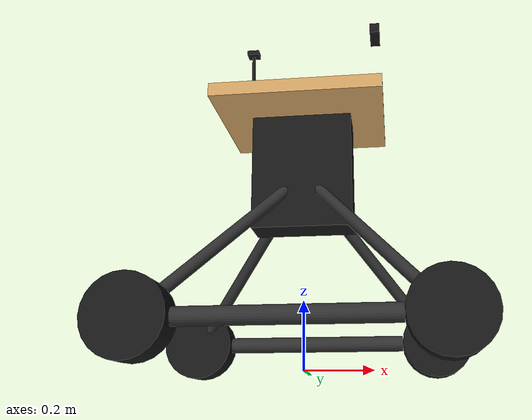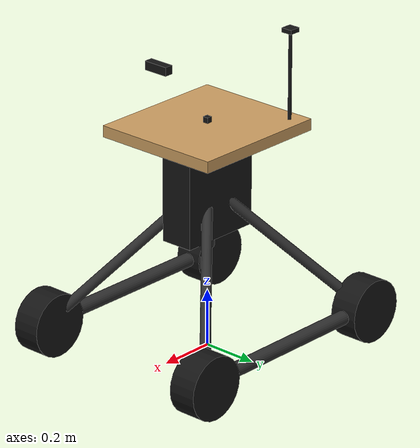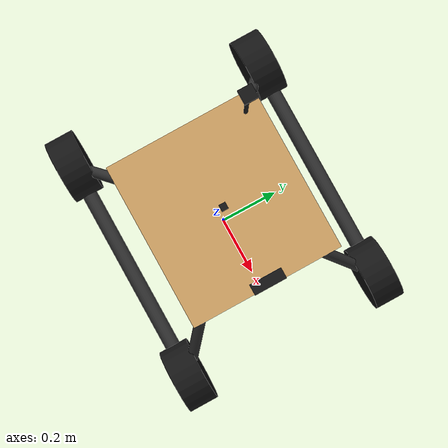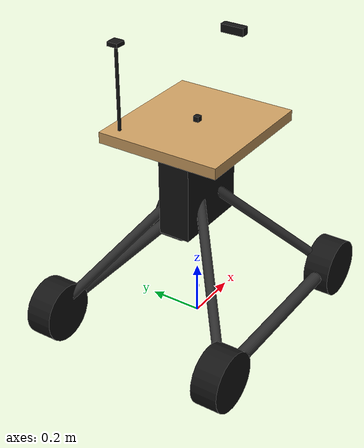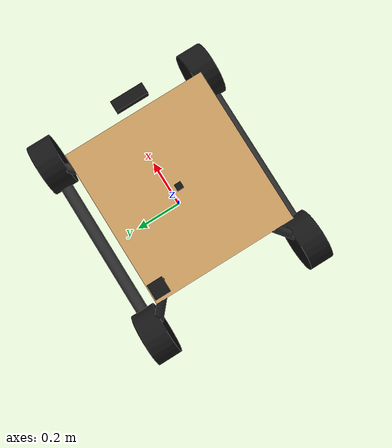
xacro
<?xml version="1.0"?>
<robot xmlns:xacro="http://www.ros.org/wiki/xacro" name="ifarmate">

  <!-- ── Core dimensions ── -->
  <xacro:property name="wheel_radius" value="0.11"/>
  <xacro:property name="wheel_width"  value="0.10"/>
  <xacro:property name="track_width"  value="0.70"/>   <!-- left-right, front & rear -->
  <xacro:property name="wheelbase"    value="0.79"/>   <!-- front-rear axle span -->

  <!-- Deck (flat box on top of the spine/legs). Defined before spine
       because spine_h is derived from it (spine must physically reach
       the deck's underside — see note below). -->
  <xacro:property name="deck_len"     value="0.50"/>
  <xacro:property name="deck_wid"     value="0.46"/>
  <xacro:property name="deck_h_box"   value="0.04"/>
  <xacro:property name="deck_height"  value="0.80"/>   <!-- ground -> deck TOP, user spec -->
  <xacro:property name="deck_z"       value="${deck_height - wheel_radius - deck_h_box/2}"/>

  <xacro:property name="spine_len"    value="0.30"/>
  <xacro:property name="spine_wid"    value="0.12"/>
  <xacro:property name="spine_h"      value="${deck_z - deck_h_box/2 - 0.30}"/>
  <!-- spine bottom sits 0.30 m above base_link; centre is bottom + h/2 -->
  <xacro:property name="spine_bottom" value="0.30"/>
  <xacro:property name="spine_z"      value="${spine_bottom + spine_h/2}"/>

  <!-- frame_box dimension properties removed along with the link itself -->

  <!-- Mast (rear antenna) -->
  <xacro:property name="mast_h"       value="0.30"/>
  <xacro:property name="mast_r"       value="0.006"/>
  <!-- mast base at deck top, rear-left corner -->
  <xacro:property name="mast_x"       value="${-deck_len/2 + 0.05}"/>
  <xacro:property name="mast_y"       value="${deck_wid/2 - 0.05}"/>

  <xacro:property name="leg_radius"   value="0.018"/>

  <!-- ── Materials ── -->
  <material name="black">  <color rgba="0.08 0.08 0.08 1.0"/> </material>
  <material name="darkgrey"><color rgba="0.18 0.18 0.18 1.0"/> </material>
  <material name="ply">    <color rgba="0.80 0.62 0.38 1.0"/> </material>
  <material name="orange"> <color rgba="0.95 0.45 0.05 1.0"/> </material>
  <material name="grey">   <color rgba="0.55 0.55 0.55 1.0"/> </material>

  <link name="base_footprint"/>

  <link name="base_link">
    <visual>
      <origin xyz="0 0 0" rpy="0 0 0"/>
      <geometry> <box size="0.01 0.01 0.01"/> </geometry>
      <material name="black"/>
    </visual>
  </link>

  <joint name="base_footprint_joint" type="fixed">
    <parent link="base_footprint"/>
    <child  link="base_link"/>
    <origin xyz="0 0 ${wheel_radius}" rpy="0 0 0"/>
  </joint>

  <xacro:macro name="wheel" params="prefix x y">
    <link name="${prefix}_wheel">
      <visual>
        <origin xyz="0 0 0" rpy="${pi/2} 0 0"/>
        <geometry> <cylinder radius="${wheel_radius}" length="${wheel_width}"/> </geometry>
        <material name="black"/>
      </visual>
      <collision>
        <origin xyz="0 0 0" rpy="${pi/2} 0 0"/>
        <geometry> <cylinder radius="${wheel_radius}" length="${wheel_width}"/> </geometry>
      </collision>
      <inertial>
        <mass value="3.5"/>
        <!-- cylinder: ixx=iyy=(1/12)*m*(3r²+h²), izz=(1/2)*m*r² -->
        <inertia ixx="0.014" ixy="0" ixz="0" iyy="0.014" iyz="0" izz="0.021"/>
      </inertial>
    </link>

    <gazebo reference="${prefix}_wheel">
      <mu1>2.0</mu1>
      <mu2>0.3</mu2>
      <fdir1>1 0 0</fdir1>
      <minDepth>0.001</minDepth>
      <kp>1e6</kp>
      <kd>1.0</kd>
    </gazebo>

    <joint name="${prefix}_wheel_joint" type="continuous">
      <parent link="base_link"/>
      <child  link="${prefix}_wheel"/>
      <origin xyz="${x} ${y} 0" rpy="0 0 0"/>
      <axis xyz="0 1 0"/>
      <limit effort="100.0" velocity="10.0"/>
      <dynamics damping="0.1" friction="0.1"/>
    </joint>
  </xacro:macro>

  <xacro:wheel prefix="front_left"  x="${wheelbase/2}"  y="${track_width/2}"/>
  <xacro:wheel prefix="front_right" x="${wheelbase/2}"  y="-${track_width/2}"/>
  <xacro:wheel prefix="back_left"   x="-${wheelbase/2}" y="${track_width/2}"/>
  <xacro:wheel prefix="back_right"  x="-${wheelbase/2}" y="-${track_width/2}"/>

  <xacro:property name="crossmember_r" value="0.025"/>

  <xacro:macro name="crossmember" params="prefix y">
    <link name="${prefix}_crossmember">
      <visual>
        <origin xyz="0 0 0" rpy="0 ${pi/2} 0"/>
        <geometry> <cylinder radius="${crossmember_r}" length="${wheelbase - 2*wheel_radius}"/> </geometry>
        <material name="darkgrey"/>
      </visual>
      <collision>
        <origin xyz="0 0 0" rpy="0 ${pi/2} 0"/>
        <geometry> <cylinder radius="${crossmember_r}" length="${wheelbase - 2*wheel_radius}"/> </geometry>
      </collision>
      <inertial>
        <mass value="2.0"/>
        <inertia ixx="0.02" ixy="0" ixz="0" iyy="0.02" iyz="0" izz="0.005"/>
      </inertial>
    </link>
    <joint name="${prefix}_crossmember_joint" type="fixed">
      <parent link="base_link"/>
      <child  link="${prefix}_crossmember"/>
      <origin xyz="0 ${y} 0" rpy="0 0 0"/>
    </joint>
  </xacro:macro>

  <xacro:crossmember prefix="left"  y="${track_width/2}"/>
  <xacro:crossmember prefix="right" y="${-track_width/2}"/>

  <!-- ══════════════════════════════════════════════════════════════
       SPINE  (central raised box; legs and deck attach here)
       ══════════════════════════════════════════════════════════════ -->
  <link name="spine_link">
    <visual>
      <origin xyz="0 0 0" rpy="0 0 0"/>
      <geometry> <box size="${spine_len} ${spine_wid} ${spine_h}"/> </geometry>
      <material name="black"/>
    </visual>
    <collision>
      <origin xyz="0 0 0" rpy="0 0 0"/>
      <geometry> <box size="${spine_len} ${spine_wid} ${spine_h}"/> </geometry>
    </collision>
    <inertial>
      <mass value="4.0"/>
      <inertia ixx="0.08" ixy="0" ixz="0" iyy="0.08" iyz="0" izz="0.02"/>
    </inertial>
  </link>

  <joint name="spine_joint" type="fixed">
    <parent link="base_link"/>
    <child  link="spine_link"/>
    <origin xyz="0 0 ${spine_z}" rpy="0 0 0"/>
  </joint>

  <xacro:property name="leg_len"   value="0.710035"/>
  <xacro:property name="leg_pitch" value="2.303633"/>

  <xacro:macro name="leg" params="prefix yaw">
    <link name="${prefix}_leg">
      <visual>
        <origin xyz="0 0 ${leg_len/2}" rpy="0 0 0"/>
        <geometry> <cylinder radius="${leg_radius}" length="${leg_len}"/> </geometry>
        <material name="darkgrey"/>
      </visual>
      <inertial>
        <mass value="0.6"/>
        <inertia ixx="0.005" ixy="0" ixz="0" iyy="0.005" iyz="0" izz="0.001"/>
      </inertial>
    </link>

    <joint name="${prefix}_leg_joint" type="fixed">
      <parent link="spine_link"/>
      <child  link="${prefix}_leg"/>
      <origin xyz="0 0 0" rpy="0 ${leg_pitch} ${yaw}"/>
    </joint>
  </xacro:macro>

  <!-- yaw values precomputed above: ±0.725069 (front corners),
       ±2.416524 (rear corners) -->
  <xacro:leg prefix="front_left"  yaw="0.725069"/>
  <xacro:leg prefix="front_right" yaw="-0.725069"/>
  <xacro:leg prefix="back_left"   yaw="2.416524"/>
  <xacro:leg prefix="back_right"  yaw="-2.416524"/>

  <!-- frame_box (under-deck battery/ESC housing) removed — it was the
       lowest-hanging body mass between the legs and capped ground
       clearance. Deck and spine now carry the body without it. -->

  <link name="deck_link">
    <visual>
      <origin xyz="0 0 0" rpy="0 0 0"/>
      <geometry> <box size="${deck_len} ${deck_wid} ${deck_h_box}"/> </geometry>
      <material name="ply"/>
    </visual>
    <collision>
      <origin xyz="0 0 0" rpy="0 0 0"/>
      <geometry> <box size="${deck_len} ${deck_wid} ${deck_h_box}"/> </geometry>
    </collision>
    <inertial>
      <mass value="2.5"/>
      <inertia ixx="0.05" ixy="0" ixz="0" iyy="0.05" iyz="0" izz="0.1"/>
    </inertial>
  </link>

  <joint name="deck_joint" type="fixed">
    <parent link="base_link"/>
    <child  link="deck_link"/>
    <origin xyz="0 0 ${deck_z}" rpy="0 0 0"/>
  </joint>

  <!-- ══════════════════════════════════════════════════════════════
       MAST  (rear antenna rod)
       ══════════════════════════════════════════════════════════════ -->
  <link name="mast_link">
    <visual>
      <origin xyz="0 0 0" rpy="0 0 0"/>
      <geometry> <cylinder radius="${mast_r}" length="${mast_h}"/> </geometry>
      <material name="black"/>
    </visual>
    <inertial>
      <mass value="0.05"/>
      <inertia ixx="0.0005" ixy="0" ixz="0" iyy="0.0005" iyz="0" izz="0.0001"/>
    </inertial>
  </link>

  <joint name="mast_joint" type="fixed">
    <parent link="deck_link"/>
    <child  link="mast_link"/>
    <origin xyz="${mast_x} ${mast_y} ${deck_h_box/2 + mast_h/2}" rpy="0 0 0"/>
  </joint>

  <xacro:property name="cam_zone_bottom" value="${wheel_radius*2 + 0.64}"/>
  <xacro:property name="cam_zone_top"    value="${cam_zone_bottom + 0.39}"/>
  <xacro:property name="cam_mount_z"     value="${(cam_zone_bottom + cam_zone_top)/2}"/>

  <link name="camera_link">
    <visual>
      <origin xyz="0 0 0" rpy="0 0 0"/>
      <geometry> <box size="0.03 0.09 0.03"/> </geometry>
      <material name="black"/>
    </visual>
    <inertial>
      <mass value="0.1"/>
      <inertia ixx="0.001" ixy="0" ixz="0" iyy="0.001" iyz="0" izz="0.001"/>
    </inertial>
  </link>

  <!-- mounted directly off base_link at the absolute height computed
       above, independent of mast/deck so the 0.86-1.25 m ground-height
       spec holds regardless of other geometry edits -->
  <joint name="camera_joint" type="fixed">
    <parent link="base_link"/>
    <child  link="camera_link"/>
    <origin xyz="${deck_len/2 - 0.02} 0 ${cam_mount_z - wheel_radius}" rpy="0 0 0"/>
  </joint>

  <gazebo reference="camera_link">
    <sensor name="camera_sensor" type="camera">
      <always_on>true</always_on>
      <update_rate>30</update_rate>
      <topic>camera</topic>
      <gz_frame_id>camera_link</gz_frame_id>
      <pose>0 0 0 0 0.35 0</pose>
      <camera>
        <horizontal_fov>1.047</horizontal_fov>
        <image>
          <width>640</width>
          <height>480</height>
          <format>R8G8B8</format>
        </image>
        <clip>
          <near>0.1</near>
          <far>100</far>
        </clip>
      </camera>
    </sensor>
  </gazebo>

  <!-- ══════════════════════════════════════════════════════════════
       GPS  (visual + sensor, mounted on mast top)
       ══════════════════════════════════════════════════════════════ -->
  <link name="gps_link">
    <visual>
      <geometry> <box size="0.04 0.04 0.015"/> </geometry>
      <material name="black"/>
    </visual>
    <inertial>
      <mass value="0.05"/>
      <inertia ixx="0.0005" ixy="0" ixz="0" iyy="0.0005" iyz="0" izz="0.0005"/>
    </inertial>
  </link>

  <joint name="gps_joint" type="fixed">
    <parent link="mast_link"/>
    <child  link="gps_link"/>
    <origin xyz="0 0 ${mast_h/2 + 0.01}" rpy="0 0 0"/>
  </joint>

  <gazebo reference="gps_link">
    <sensor name="gps_sensor" type="navsat">
      <always_on>true</always_on>
      <update_rate>10.0</update_rate>
      <topic>gps</topic>
      <gz_frame_id>gps_link</gz_frame_id>
    </sensor>
  </gazebo>

  <!-- ══════════════════════════════════════════════════════════════
       IMU
       ══════════════════════════════════════════════════════════════ -->
  <link name="imu_link">
    <visual>
      <geometry> <box size="0.02 0.02 0.02"/> </geometry>
      <material name="black"/>
    </visual>
    <inertial>
      <mass value="0.05"/>
      <inertia ixx="0.0005" ixy="0" ixz="0" iyy="0.0005" iyz="0" izz="0.0005"/>
    </inertial>
  </link>

  <joint name="imu_joint" type="fixed">
    <parent link="deck_link"/>
    <child  link="imu_link"/>
    <origin xyz="0 0 ${deck_h_box/2 + 0.01}" rpy="0 0 0"/>
  </joint>

  <gazebo reference="imu_link">
    <sensor name="imu_sensor" type="imu">
      <always_on>true</always_on>
      <update_rate>100</update_rate>
      <topic>imu</topic>
      <gz_frame_id>imu_link</gz_frame_id>
      <imu>
        <angular_velocity/>
        <linear_acceleration/>
      </imu>
    </sensor>
  </gazebo>

  <!-- ══════════════════════════════════════════════════════════════
       LIDAR  (front of deck, optional)
       ══════════════════════════════════════════════════════════════ -->
  <xacro:arg name="use_lidar" default="false"/>

  <xacro:if value="$(arg use_lidar)">
    <link name="lidar_link">
      <visual>
        <geometry> <cylinder radius="0.04" length="0.05"/> </geometry>
        <material name="black"/>
      </visual>
    </link>

    <joint name="lidar_joint" type="fixed">
      <parent link="deck_link"/>
      <child  link="lidar_link"/>
      <origin xyz="${deck_len/2 - 0.05} 0 ${deck_h_box/2 + 0.025}" rpy="0 0 0"/>
    </joint>

    <gazebo reference="lidar_link">
      <sensor name="lidar" type="gpu_lidar">
        <pose>0 0 0 0 0 0</pose>
        <topic>scan</topic>
        <gz_frame_id>lidar_link</gz_frame_id>
        <update_rate>10</update_rate>
        <visualize>false</visualize>
        <lidar>
          <scan>
            <horizontal>
              <samples>360</samples>
              <min_angle>-3.14159</min_angle>
              <max_angle> 3.14159</max_angle>
            </horizontal>
          </scan>
          <range>
            <min>0.4</min>
            <max>20.0</max>
          </range>
        </lidar>
      </sensor>
    </gazebo>
  </xacro:if>

  <gazebo>
    <plugin filename="gz-sim-diff-drive-system"
            name="gz::sim::systems::DiffDrive">
      <left_joint>front_left_wheel_joint</left_joint>
      <left_joint>back_left_wheel_joint</left_joint>
      <right_joint>front_right_wheel_joint</right_joint>
      <right_joint>back_right_wheel_joint</right_joint>

      <wheel_separation>${track_width}</wheel_separation>
      <wheel_radius>${wheel_radius}</wheel_radius>

      <max_linear_acceleration>0.43</max_linear_acceleration>
      <max_angular_acceleration>1.0</max_angular_acceleration>

      <!-- Leading slash forces global gz topic; without it Harmonic
           scopes to /model/ifarmate/cmd_vel which the bridge does
           not route (same fix as caatinga). -->
      <topic>/cmd_vel</topic>
      <odom_topic>/_diffdrive_odom_unused</odom_topic>
      <tf_topic>/_diffdrive_tf_unused</tf_topic>

      <odom_publish_frequency>50</odom_publish_frequency>
      <frame_id>odom</frame_id>
      <child_frame_id>base_footprint</child_frame_id>
    </plugin>
  </gazebo>

  <gazebo>
    <plugin filename="gz-sim-odometry-publisher-system"
            name="gz::sim::systems::OdometryPublisher">
      <odom_frame>odom</odom_frame>
      <robot_base_frame>base_footprint</robot_base_frame>
      <odom_topic>/odom</odom_topic>
      <dimensions>3</dimensions>
      <odom_publish_frequency>50</odom_publish_frequency>
      <publish_tf>false</publish_tf>
    </plugin>
  </gazebo>

  <!-- ══════════════════════════════════════════════════════════════
       JOINT STATE PUBLISHER  — copied from caatinga
       ══════════════════════════════════════════════════════════════ -->
  <gazebo>
    <plugin filename="gz-sim-joint-state-publisher-system"
            name="gz::sim::systems::JointStatePublisher">
      <topic>joint_states</topic>
      <joint_name>front_left_wheel_joint</joint_name>
      <joint_name>front_right_wheel_joint</joint_name>
      <joint_name>back_left_wheel_joint</joint_name>
      <joint_name>back_right_wheel_joint</joint_name>
    </plugin>
  </gazebo>

  <gazebo>
    <plugin filename="gz-sim-sensors-system"
            name="gz::sim::systems::Sensors">
      <render_engine>ogre2</render_engine>
    </plugin>
  </gazebo>

  <gazebo>
    <plugin filename="gz-sim-imu-system"
            name="gz::sim::systems::Imu"/>
  </gazebo>

  <gazebo>
    <plugin filename="gz-sim-navsat-system"
            name="gz::sim::systems::NavSat"/>
  </gazebo>

</robot>
